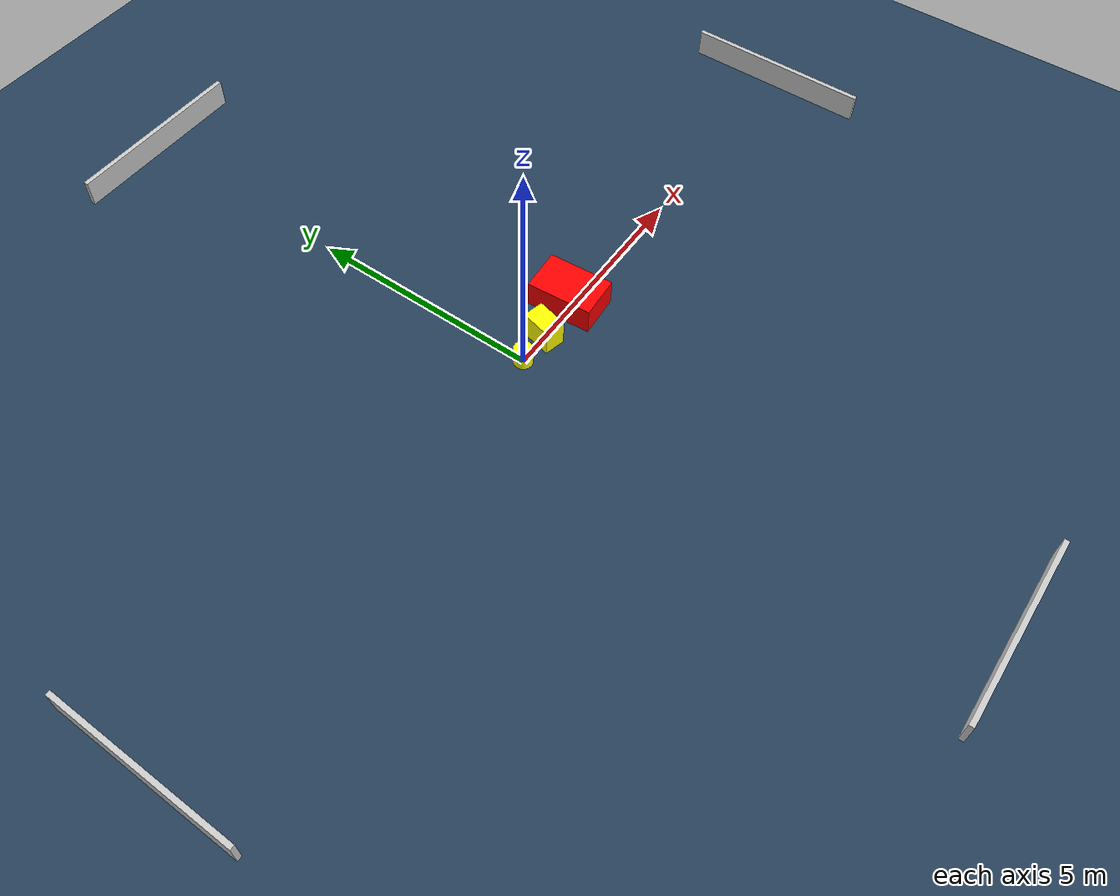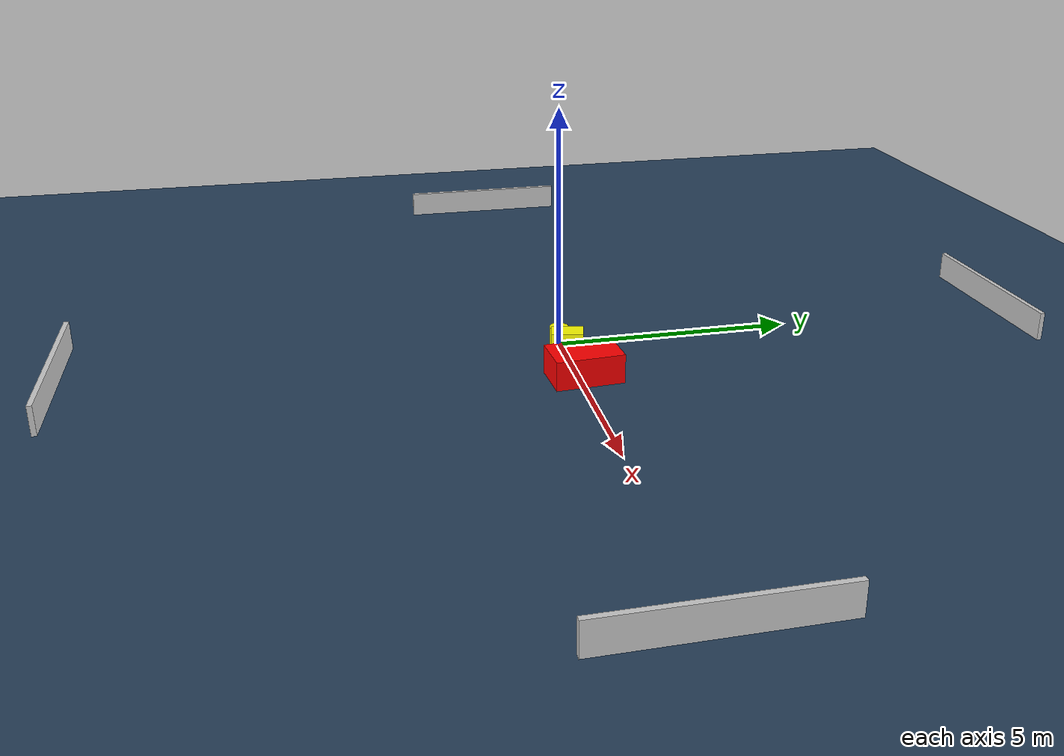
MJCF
<?xml version="1.0" ?>
<mujoco model="generated_environment">
  <option timestep="0.01" integrator="RK4" cone="elliptic"/>
  <default>
    <geom density="1"/>
  </default>
  <asset>
    <texture builtin="gradient" height="3072" name="skybox" rgb1="0.3 0.5 0.7" rgb2="0 0 0" type="skybox" width="512"/>
    <texture builtin="checker" height="300" name="groundplane" rgb1="0.2 0.3 0.4" rgb2="0.1 0.2 0.3" type="2d" width="300"/>
    <material name="groundplane" reflectance="0.2" texrepeat="5 5" texture="groundplane"/>
  </asset>
  <worldbody>
    <light dir="0 0 -1" directional="true" pos="0 0 1.5"/>
    <geom condim="3" friction="0.5 0.005 0.001" material="groundplane" name="floor" pos="0 0 0" size="0 0 0.05" type="plane"/>
    <body name="walls">
      <geom name="wall_1" condim="4" pos="-10.0 0.0 0.3" rgba="0.800000011920929 0.800000011920929 0.800000011920929 1.0" size="0.05 2.0 0.3" type="box"/>
      <geom name="wall_2" condim="4" pos="10.0 0.0 0.3" rgba="0.800000011920929 0.800000011920929 0.800000011920929 1.0" size="0.05 2.0 0.3" type="box"/>
      <geom name="wall_3" condim="4" pos="0.0 -10.0 0.3" rgba="0.800000011920929 0.800000011920929 0.800000011920929 1.0" size="2.0 0.05 0.3" type="box"/>
      <geom name="wall_4" condim="4" pos="0.0 10.0 0.3" rgba="0.800000011920929 0.800000011920929 0.800000011920929 1.0" size="2.0 0.05 0.3" type="box"/>
    </body>
    <body name="robot">
      <joint name="joint_x" type="slide" pos="0 0 0" axis="1 0 0"/>
      <joint name="joint_y" type="slide" pos="0 0 0" axis="0 1 0"/>
      <geom name="robot" type="cylinder" pos="0.0 0.0 0.2" size="0.2 0.2 0.0" mass="5.0" friction="1.0 0.005 0.0001" condim="4" rgba="1.0 1.0 0.0 1.0"/>
    </body>
    <body name="obstacle_1_movable">
      <geom name="obstacle_1_movable" condim="4" pos="0.7079461999250115 0.012477943413842583 0.3" euler="0 0 256.67745327807495" friction="0.0 0.005 0.001" rgba="1.0 1.0 0.0 1.0" size="0.3266984155517113 0.22490667702373998 0.3" type="box" mass="0.1"/>
      <joint type="free"/>
    </body>
    <body name="obstacle_2_static">
      <geom name="obstacle_2_static" condim="4" pos="1.744116220006928 0.11419513217859235 0.3" euler="0 0 273.91600379512204" friction="0.0 0.005 0.001" rgba="1.0 0.0 0.0 1.0" size="0.6957673099269484 0.45621979836692994 0.3" type="box"/>
    </body>
  </worldbody>
  <actuator>
    <motor name="actuator_x" joint="joint_x" gear="1" ctrlrange="-1 1"/>
    <motor name="actuator_y" joint="joint_y" gear="1" ctrlrange="-1 1"/>
  </actuator>
</mujoco>
